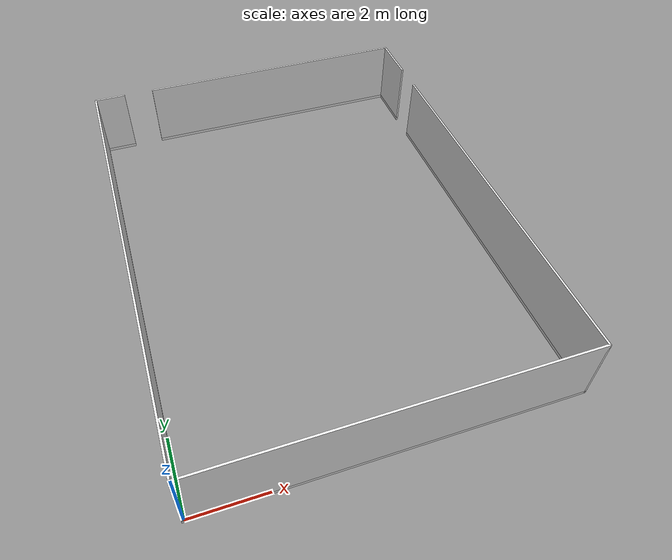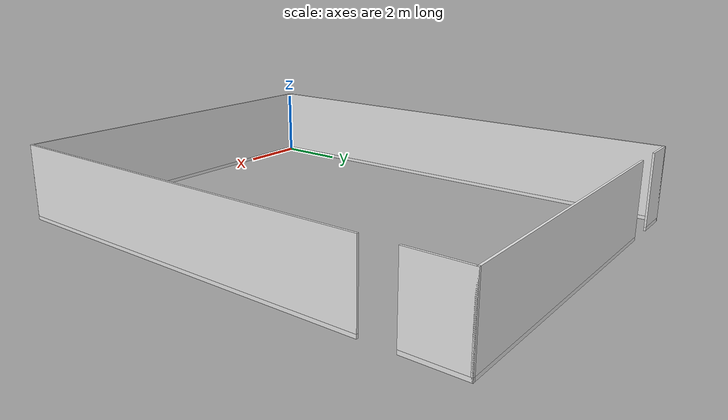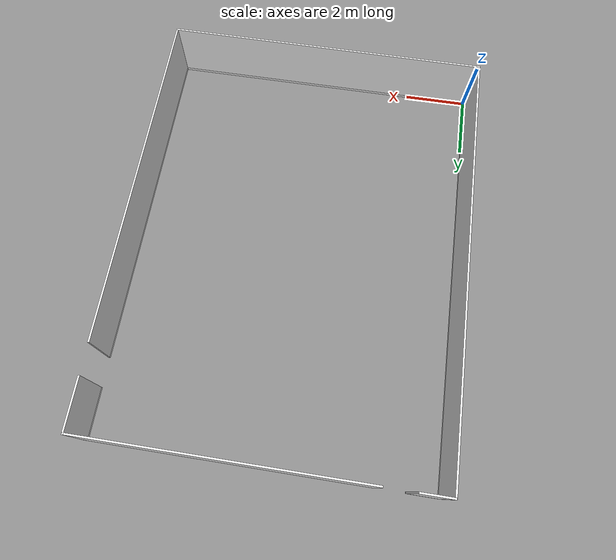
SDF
<?xml version="1.0" ?>
<sdf version="1.4">
    <model name='full_outside_wall'>
      <link name='link'>
        <inertial>
          <mass>50</mass>
          <inertia>
            <ixx>1</ixx>
            <ixy>0</ixy>
            <ixz>0</ixz>
            <iyy>1</iyy>
            <iyz>0</iyz>
            <izz>1</izz>
          </inertia>
        </inertial>
        <visual name='x00_13y00_bottom_frame'>
          <pose>5.0375 -0.0275 0.05 0 0 0</pose>
          <geometry>
            <box>
              <size>10.185 0.055 0.1</size>
            </box>
          </geometry>
          <material>
            <script>
              <uri>model://base_materials/color/scripts</uri>
              <name>hsr_color/white</name>
            </script>
          </material>
        </visual>
        <collision name='x00_13y00_collision_bottom_frame'>
          <pose>5.0375 -0.0275 0.05 0 0 0</pose>
          <geometry>
            <box>
              <size>10.185 0.055 0.1</size>
            </box>
          </geometry>
          <max_contacts>10</max_contacts>
          <surface>
            <bounce/>
            <friction>
              <ode/>
            </friction>
            <contact>
              <ode/>
            </contact>
          </surface>
        </collision>
        <visual name='wall_x00_13y00'>
          <pose>5.0375 -0.0275 1.095 0 0 0</pose>
          <geometry>
            <box>
              <size>10.185 0.055 1.99</size>
            </box>
          </geometry>
          <material>
            <script>
              <uri>model://base_materials/wall/scripts</uri>
              <uri>model://base_materials/wall/textures</uri>
              <name>wall/white_noise</name>
            </script>
          </material>
        </visual>
        <collision name='wall_x00_13y00'>
          <pose>5.0375 -0.002 1.095 0 0 0</pose>
          <geometry>
            <box>
              <size>10.08 0.055 1.99</size>
            </box>
          </geometry>
          <max_contacts>10</max_contacts>
          <surface>
            <bounce/>
            <friction>
              <ode/>
            </friction>
            <contact>
              <ode/>
            </contact>
          </surface>
        </collision>
        <visual name='x00y00_15_bottom_frame'>
          <pose>-0.0275 6.59 0.05 0 0 0</pose>
          <geometry>
            <box>
              <size>0.055 13.29 0.1</size>
            </box>
          </geometry>
          <material>
            <script>
              <uri>model://base_materials/color/scripts</uri>
              <name>hsr_color/white</name>
            </script>
          </material>
        </visual>
        <collision name='x00y00_15_collision_bottom_frame'>
          <pose>-0.0275 6.59 0.05 0 0 0</pose>
          <geometry>
            <box>
              <size>0.055 13.29 0.1</size>
            </box>
          </geometry>
          <max_contacts>10</max_contacts>
          <surface>
            <bounce/>
            <friction>
              <ode/>
            </friction>
            <contact>
              <ode/>
            </contact>
          </surface>
        </collision>
        <visual name='wall_x00y00_15'>
          <pose>-0.0275 6.59 1.095 0 0 0</pose>
          <geometry>
            <box>
              <size>0.055 13.29 1.99</size>
            </box>
          </geometry>
          <material>
            <script>
              <uri>model://base_materials/wall/scripts</uri>
              <uri>model://base_materials/wall/textures</uri>
              <name>wall/white_noise</name>
            </script>
          </material>
        </visual>
        <collision name='wall_x00y00_x00y15'>
          <pose>-0.002 6.59 1.095 0 0 0</pose>
          <geometry>
            <box>
              <size>0.002 13.29 1.99</size>
            </box>
          </geometry>
          <max_contacts>10</max_contacts>
          <surface>
            <bounce/>
            <friction>
              <ode/>
            </friction>
            <contact>
              <ode/>
            </contact>
          </surface>
        </collision>
        <visual name='x13y00_12_bottom_frame'>
          <pose>10.1025 5.3725 0.05 0 0 0</pose>
          <geometry>
            <box>
              <size>0.055 10.855 0.1</size>
            </box>
          </geometry>
          <material>
            <script>
              <uri>model://base_materials/color/scripts</uri>
              <name>hsr_color/white</name>
            </script>
          </material>
        </visual>
        <collision name='x13y00_12_collision_bottom_frame'>
          <pose>10.1025 5.3725 0.05 0 0 0</pose>
          <geometry>
            <box>
              <size>0.055 10.855 0.1</size>
            </box>
          </geometry>
          <max_contacts>10</max_contacts>
          <surface>
            <bounce/>
            <friction>
              <ode/>
            </friction>
            <contact>
              <ode/>
            </contact>
          </surface>
        </collision>
        <visual name='wall_x13y00_12'>
          <pose>10.1025 5.3725 1.095 0 0 0</pose>
          <geometry>
            <box>
              <size>0.055 10.855 1.99</size>
            </box>
          </geometry>
          <material>
            <script>
              <uri>model://base_materials/wall/scripts</uri>
              <uri>model://base_materials/wall/textures</uri>
              <name>wall/white_noise</name>
            </script>
          </material>
        </visual>
        <collision name='wall_x13y00_12'>
          <pose>10.1025 5.3725 1.095 0 0 0</pose>
          <geometry>
            <box>
              <size>0.055 10.855 1.99</size>
            </box>
          </geometry>
          <max_contacts>10</max_contacts>
          <surface>
            <bounce/>
            <friction>
              <ode/>
            </friction>
            <contact>
              <ode/>
            </contact>
          </surface>
        </collision>
        <visual name='x13y14_16_bottom_frame'>
          <pose>10.1025 12.4675 0.05 0 0 0</pose>
          <geometry>
            <box>
              <size>0.055 1.535 0.1</size>
            </box>
          </geometry>
          <material>
            <script>
              <uri>model://base_materials/color/scripts</uri>
              <name>hsr_color/white</name>
            </script>
          </material>
        </visual>
        <collision name='x13y14_16_collision_bottom_frame'>
          <pose>10.1025 12.4675 0.05 0 0 0</pose>
          <geometry>
            <box>
              <size>0.055 1.535 0.1</size>
            </box>
          </geometry>
          <max_contacts>10</max_contacts>
          <surface>
            <bounce/>
            <friction>
              <ode/>
            </friction>
            <contact>
              <ode/>
            </contact>
          </surface>
        </collision>
        <visual name='wall_x13y14_x13y16'>
          <pose>10.1025 12.4675 1.095 0 0 0</pose>
          <geometry>
            <box>
              <size>0.055 1.535 1.99</size>
            </box>
          </geometry>
          <material>
            <script>
              <uri>model://base_materials/wall/scripts</uri>
              <uri>model://base_materials/wall/textures</uri>
              <name>wall/white_noise</name>
            </script>
          </material>
        </visual>
        <collision name='wall_x13y14_x13y16'>
          <pose>10.1025 12.4675 1.095 0 0 0</pose>
          <geometry>
            <box>
              <size>0.055 1.535 1.99</size>
            </box>
          </geometry>
          <max_contacts>10</max_contacts>
          <surface>
            <bounce/>
            <friction>
              <ode/>
            </friction>
            <contact>
              <ode/>
            </contact>
          </surface>
        </collision>
        <visual name='x00_01y16_bottom_frame'>
          <pose>0.4225 13.2075 0.05 0 0 0</pose>
          <geometry>
            <box>
              <size>0.955 0.055 0.1</size>
            </box>
          </geometry>
          <material>
            <script>
              <uri>model://base_materials/color/scripts</uri>
              <name>hsr_color/white</name>
            </script>
          </material>
        </visual>
        <collision name='x00_01y16_collision_bottom_frame'>
          <pose>0.4225 13.2075 0.05 0 0 0</pose>
          <geometry>
            <box>
              <size>0.955 0.055 0.1</size>
            </box>
          </geometry>
          <max_contacts>10</max_contacts>
          <surface>
            <bounce/>
            <friction>
              <ode/>
            </friction>
            <contact>
              <ode/>
            </contact>
          </surface>
        </collision>
        <visual name='wall_x00_01y16'>
          <pose>0.4225 13.2075 1.095 0 0 0</pose>
          <geometry>
            <box>
              <size>0.955 0.055 1.99</size>
            </box>
          </geometry>
          <material>
            <script>
              <uri>model://base_materials/wall/scripts</uri>
              <uri>model://base_materials/wall/textures</uri>
              <name>wall/white_noise</name>
            </script>
          </material>
        </visual>
        <collision name='wall_x00_x01y16'>
          <pose>0.4225 13.2075 1.095 0 0 0</pose>
          <geometry>
            <box>
              <size>0.955 0.055 1.99</size>
            </box>
          </geometry>
          <max_contacts>10</max_contacts>
          <surface>
            <bounce/>
            <friction>
              <ode/>
            </friction>
            <contact>
              <ode/>
            </contact>
          </surface>
        </collision>

        <visual name='x03_13y16_bottom_frame'>
          <pose>5.965 13.2075 0.05 0 0 0</pose>
          <geometry>
            <box>
              <size>8.330 0.05 0.1</size>
            </box>
          </geometry>
          <material>
            <script>
              <uri>model://base_materials/color/scripts</uri>
              <name>hsr_color/white</name>
            </script>
          </material>
        </visual>
        <collision name='x03_13y16_collision_bottom_frame'>
          <pose>5.965 13.2075 0.05 0 0 0</pose>
          <geometry>
            <box>
              <size>8.330 0.05 0.1</size>
            </box>
          </geometry>
          <max_contacts>10</max_contacts>
          <surface>
            <bounce/>
            <friction>
              <ode/>
            </friction>
            <contact>
              <ode/>
            </contact>
          </surface>
        </collision>
        <visual name='wall_x03_13y16'>
          <pose>5.965 13.2075 1.095 0 0 0</pose>
          <geometry>
            <box>
              <size>8.330 0.055 1.99</size>
            </box>
          </geometry>
          <material>
            <script>
              <uri>model://base_materials/wall/scripts</uri>
              <uri>model://base_materials/wall/textures</uri>
              <name>wall/white_noise</name>
            </script>
          </material>
        </visual>
        <collision name='wall_x03_13y16'>
          <pose>5.965 13.2075 1.095 0 0 0</pose>
          <geometry>
            <box>
              <size>8.330 0.055 1.99</size>
            </box>
          </geometry>
          <max_contacts>10</max_contacts>
          <surface>
            <bounce/>
            <friction>
              <ode/>
            </friction>
            <contact>
              <ode/>
            </contact>
          </surface>
        </collision>

        <velocity_decay>
          <linear>0</linear>
          <angular>0</angular>
        </velocity_decay>
        <self_collide>0</self_collide>
        <kinematic>0</kinematic>
        <gravity>1</gravity>
      </link>
      <static>1</static>
    </model>
</sdf>
